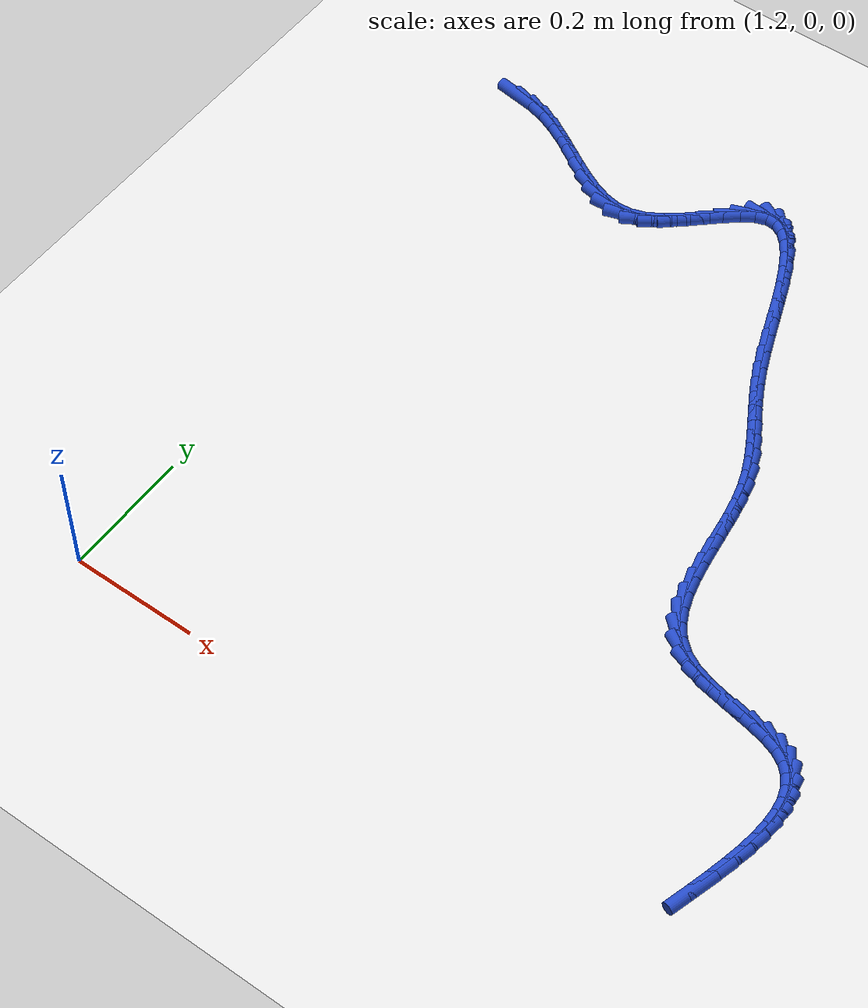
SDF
<sdf version="1.6">
 <world name="default">
  <model name="ground_plane">
   <static>1</static>
   <link name="link">
    <collision name="collision">
     <geometry><plane><normal>0 0 1</normal><size>100 100</size></plane></geometry>
     <surface><friction><ode><mu>100</mu><mu2>50</mu2></ode></friction></surface>
    </collision>
    <visual name="visual">
     <cast_shadows>0</cast_shadows>
     <geometry><plane><normal>0 0 1</normal><size>100 100</size></plane></geometry>
     <material>
      <script><uri>file://media/materials/scripts/gazebo.material</uri><name>Gazebo/WhiteGlow</name></script>
     </material>
    </visual>
   </link>
  </model>
  <model name="line">
   <link name="link_72">
    <pose>1.1750948468922375 1.0718994148305059 0.01 0 1.57 -0.14294108561909138</pose>
    <collision name="collision">
     <geometry><cylinder><radius>0.01</radius><length>0.08</length></cylinder></geometry>
    </collision>
    <visual name="visual">
     <material>
      <script><name>Gazebo/Blue</name><uri>file://media/materials/scripts/gazebo.material</uri></script>
     </material>
     <geometry><cylinder><radius>0.01</radius><length>0.08</length></cylinder></geometry>
    </visual>
   </link>
   <link name="link_73">
    <pose>1.202632668959613 1.06793609878063 0.01 0 1.57 -0.26894906797217144</pose>
    <collision name="collision">
     <geometry><cylinder><radius>0.01</radius><length>0.08</length></cylinder></geometry>
    </collision>
    <visual name="visual">
     <material>
      <script><name>Gazebo/Blue</name><uri>file://media/materials/scripts/gazebo.material</uri></script>
     </material>
     <geometry><cylinder><radius>0.01</radius><length>0.08</length></cylinder></geometry>
    </visual>
   </link>
   <link name="link_74">
    <pose>1.2296830183890382 1.060480291139011 0.01 0 1.57 -0.39330779206226607</pose>
    <collision name="collision">
     <geometry><cylinder><radius>0.01</radius><length>0.08</length></cylinder></geometry>
    </collision>
    <visual name="visual">
     <material>
      <script><name>Gazebo/Blue</name><uri>file://media/materials/scripts/gazebo.material</uri></script>
     </material>
     <geometry><cylinder><radius>0.01</radius><length>0.08</length></cylinder></geometry>
    </visual>
   </link>
   <link name="link_75">
    <pose>1.2561736688695626 1.0494886078980596 0.01 0 1.57 -0.4793022470671209</pose>
    <collision name="collision">
     <geometry><cylinder><radius>0.01</radius><length>0.08</length></cylinder></geometry>
    </collision>
    <visual name="visual">
     <material>
      <script><name>Gazebo/Blue</name><uri>file://media/materials/scripts/gazebo.material</uri></script>
     </material>
     <geometry><cylinder><radius>0.01</radius><length>0.08</length></cylinder></geometry>
    </visual>
   </link>
   <link name="link_76">
    <pose>1.2821425605165808 1.035991943936735 0.01 0 1.57 -0.5271888174598964</pose>
    <collision name="collision">
     <geometry><cylinder><radius>0.01</radius><length>0.08</length></cylinder></geometry>
    </collision>
    <visual name="visual">
     <material>
      <script><name>Gazebo/Blue</name><uri>file://media/materials/scripts/gazebo.material</uri></script>
     </material>
     <geometry><cylinder><radius>0.01</radius><length>0.08</length></cylinder></geometry>
    </visual>
   </link>
   <link name="link_77">
    <pose>1.3076406678835422 1.0211482983894755 0.01 0 1.57 -0.5399986357784393</pose>
    <collision name="collision">
     <geometry><cylinder><radius>0.01</radius><length>0.08</length></cylinder></geometry>
    </collision>
    <visual name="visual">
     <material>
      <script><name>Gazebo/Blue</name><uri>file://media/materials/scripts/gazebo.material</uri></script>
     </material>
     <geometry><cylinder><radius>0.01</radius><length>0.08</length></cylinder></geometry>
    </visual>
   </link>
   <link name="link_78">
    <pose>1.3327189655238965 1.0061156703907195 0.01 0 1.57 -0.5174334839989857</pose>
    <collision name="collision">
     <geometry><cylinder><radius>0.01</radius><length>0.08</length></cylinder></geometry>
    </collision>
    <visual name="visual">
     <material>
      <script><name>Gazebo/Blue</name><uri>file://media/materials/scripts/gazebo.material</uri></script>
     </material>
     <geometry><cylinder><radius>0.01</radius><length>0.08</length></cylinder></geometry>
    </visual>
   </link>
   <link name="link_79">
    <pose>1.3574284279910924 0.9920520590749053 0.01 0 1.57 -0.4551100600985925</pose>
    <collision name="collision">
     <geometry><cylinder><radius>0.01</radius><length>0.08</length></cylinder></geometry>
    </collision>
    <visual name="visual">
     <material>
      <script><name>Gazebo/Blue</name><uri>file://media/materials/scripts/gazebo.material</uri></script>
     </material>
     <geometry><cylinder><radius>0.01</radius><length>0.08</length></cylinder></geometry>
    </visual>
   </link>
   <link name="link_80">
    <pose>1.381820029838579 0.9801154635764713 0.01 0 1.57 -0.3443324530920283</pose>
    <collision name="collision">
     <geometry><cylinder><radius>0.01</radius><length>0.08</length></cylinder></geometry>
    </collision>
    <visual name="visual">
     <material>
      <script><name>Gazebo/Blue</name><uri>file://media/materials/scripts/gazebo.material</uri></script>
     </material>
     <geometry><cylinder><radius>0.01</radius><length>0.08</length></cylinder></geometry>
    </visual>
   </link>
   <link name="link_81">
    <pose>1.4059447456198064 0.9714638830298553 0.01 0 1.57 -0.17424081367749977</pose>
    <collision name="collision">
     <geometry><cylinder><radius>0.01</radius><length>0.08</length></cylinder></geometry>
    </collision>
    <visual name="visual">
     <material>
      <script><name>Gazebo/Blue</name><uri>file://media/materials/scripts/gazebo.material</uri></script>
     </material>
     <geometry><cylinder><radius>0.01</radius><length>0.08</length></cylinder></geometry>
    </visual>
   </link>
   <link name="link_82">
    <pose>1.4298535498882234 0.9672553165694961 0.01 0 1.57 0.05857738921441904</pose>
    <collision name="collision">
     <geometry><cylinder><radius>0.01</radius><length>0.08</length></cylinder></geometry>
    </collision>
    <visual name="visual">
     <material>
      <script><name>Gazebo/Blue</name><uri>file://media/materials/scripts/gazebo.material</uri></script>
     </material>
     <geometry><cylinder><radius>0.01</radius><length>0.08</length></cylinder></geometry>
    </visual>
   </link>
   <link name="link_83">
    <pose>1.4535974171972794 0.9686477633298317 0.01 0 1.57 0.3290535102537519</pose>
    <collision name="collision">
     <geometry><cylinder><radius>0.01</radius><length>0.08</length></cylinder></geometry>
    </collision>
    <visual name="visual">
     <material>
      <script><name>Gazebo/Blue</name><uri>file://media/materials/scripts/gazebo.material</uri></script>
     </material>
     <geometry><cylinder><radius>0.01</radius><length>0.08</length></cylinder></geometry>
    </visual>
   </link>
   <link name="link_84">
    <pose>1.4772212800030426 0.9767145488347417 0.01 0 1.57 0.5439208422819638</pose>
    <collision name="collision">
     <geometry><cylinder><radius>0.01</radius><length>0.08</length></cylinder></geometry>
    </collision>
    <visual name="visual">
     <material>
      <script><name>Gazebo/Blue</name><uri>file://media/materials/scripts/gazebo.material</uri></script>
     </material>
     <geometry><cylinder><radius>0.01</radius><length>0.08</length></cylinder></geometry>
    </visual>
   </link>
   <link name="link_85">
    <pose>1.500652777641465 0.9908852594644579 0.01 0 1.57 0.6684980318929817</pose>
    <collision name="collision">
     <geometry><cylinder><radius>0.01</radius><length>0.08</length></cylinder></geometry>
    </collision>
    <visual name="visual">
     <material>
      <script><name>Gazebo/Blue</name><uri>file://media/materials/scripts/gazebo.material</uri></script>
     </material>
     <geometry><cylinder><radius>0.01</radius><length>0.08</length></cylinder></geometry>
    </visual>
   </link>
   <link name="link_86">
    <pose>1.5237131667250068 1.0090986401361108 0.01 0 1.57 0.7299794538144441</pose>
    <collision name="collision">
     <geometry><cylinder><radius>0.01</radius><length>0.08</length></cylinder></geometry>
    </collision>
    <visual name="visual">
     <material>
      <script><name>Gazebo/Blue</name><uri>file://media/materials/scripts/gazebo.material</uri></script>
     </material>
     <geometry><cylinder><radius>0.01</radius><length>0.08</length></cylinder></geometry>
    </visual>
   </link>
   <link name="link_87">
    <pose>1.5462198503705196 1.0292394330975594 0.01 0 1.57 0.7418665057884931</pose>
    <collision name="collision">
     <geometry><cylinder><radius>0.01</radius><length>0.08</length></cylinder></geometry>
    </collision>
    <visual name="visual">
     <material>
      <script><name>Gazebo/Blue</name><uri>file://media/materials/scripts/gazebo.material</uri></script>
     </material>
     <geometry><cylinder><radius>0.01</radius><length>0.08</length></cylinder></geometry>
    </visual>
   </link>
   <link name="link_88">
    <pose>1.5679902316948557 1.0491923805966634 0.01 0 1.57 0.7024324888977352</pose>
    <collision name="collision">
     <geometry><cylinder><radius>0.01</radius><length>0.08</length></cylinder></geometry>
    </collision>
    <visual name="visual">
     <material>
      <script><name>Gazebo/Blue</name><uri>file://media/materials/scripts/gazebo.material</uri></script>
     </material>
     <geometry><cylinder><radius>0.01</radius><length>0.08</length></cylinder></geometry>
    </visual>
   </link>
   <link name="link_89">
    <pose>1.5888417138148654 1.0668422248812817 0.01 0 1.57 0.5902715443844094</pose>
    <collision name="collision">
     <geometry><cylinder><radius>0.01</radius><length>0.08</length></cylinder></geometry>
    </collision>
    <visual name="visual">
     <material>
      <script><name>Gazebo/Blue</name><uri>file://media/materials/scripts/gazebo.material</uri></script>
     </material>
     <geometry><cylinder><radius>0.01</radius><length>0.08</length></cylinder></geometry>
    </visual>
   </link>
   <link name="link_90">
    <pose>1.6085916998474008 1.080073708199273 0.01 0 1.57 0.3479893441711368</pose>
    <collision name="collision">
     <geometry><cylinder><radius>0.01</radius><length>0.08</length></cylinder></geometry>
    </collision>
    <visual name="visual">
     <material>
      <script><name>Gazebo/Blue</name><uri>file://media/materials/scripts/gazebo.material</uri></script>
     </material>
     <geometry><cylinder><radius>0.01</radius><length>0.08</length></cylinder></geometry>
    </visual>
   </link>
   <link name="link_91">
    <pose>1.627057674048823 1.0867722698052826 0.01 0 1.57 -0.07267802041351287</pose>
    <collision name="collision">
     <geometry><cylinder><radius>0.01</radius><length>0.08</length></cylinder></geometry>
    </collision>
    <visual name="visual">
     <material>
      <script><name>Gazebo/Blue</name><uri>file://media/materials/scripts/gazebo.material</uri></script>
     </material>
     <geometry><cylinder><radius>0.01</radius><length>0.08</length></cylinder></geometry>
    </visual>
   </link>
   <link name="link_92">
    <pose>1.6441392229602727 1.085528626192248 0.01 0 1.57 -0.4957483695676413</pose>
    <collision name="collision">
     <geometry><cylinder><radius>0.01</radius><length>0.08</length></cylinder></geometry>
    </collision>
    <visual name="visual">
     <material>
      <script><name>Gazebo/Blue</name><uri>file://media/materials/scripts/gazebo.material</uri></script>
     </material>
     <geometry><cylinder><radius>0.01</radius><length>0.08</length></cylinder></geometry>
    </visual>
   </link>
   <link name="link_93">
    <pose>1.6599725455999281 1.0769660486693442 0.01 0 1.57 -0.7898024223773686</pose>
    <collision name="collision">
     <geometry><cylinder><radius>0.01</radius><length>0.08</length></cylinder></geometry>
    </collision>
    <visual name="visual">
     <material>
      <script><name>Gazebo/Blue</name><uri>file://media/materials/scripts/gazebo.material</uri></script>
     </material>
     <geometry><cylinder><radius>0.01</radius><length>0.08</length></cylinder></geometry>
    </visual>
   </link>
   <link name="link_94">
    <pose>1.6747362093902405 1.0620717627430847 0.01 0 1.57 -0.9699054391754726</pose>
    <collision name="collision">
     <geometry><cylinder><radius>0.01</radius><length>0.08</length></cylinder></geometry>
    </collision>
    <visual name="visual">
     <material>
      <script><name>Gazebo/Blue</name><uri>file://media/materials/scripts/gazebo.material</uri></script>
     </material>
     <geometry><cylinder><radius>0.01</radius><length>0.08</length></cylinder></geometry>
    </visual>
   </link>
   <link name="link_95">
    <pose>1.6886087817536592 1.0418329939199809 0.01 0 1.57 -1.079505201330603</pose>
    <collision name="collision">
     <geometry><cylinder><radius>0.01</radius><length>0.08</length></cylinder></geometry>
    </collision>
    <visual name="visual">
     <material>
      <script><name>Gazebo/Blue</name><uri>file://media/materials/scripts/gazebo.material</uri></script>
     </material>
     <geometry><cylinder><radius>0.01</radius><length>0.08</length></cylinder></geometry>
    </visual>
   </link>
   <link name="link_96">
    <pose>1.7017688301126364 1.0172369677065465 0.01 0 1.57 -1.1467130301496264</pose>
    <collision name="collision">
     <geometry><cylinder><radius>0.01</radius><length>0.08</length></cylinder></geometry>
    </collision>
    <visual name="visual">
     <material>
      <script><name>Gazebo/Blue</name><uri>file://media/materials/scripts/gazebo.material</uri></script>
     </material>
     <geometry><cylinder><radius>0.01</radius><length>0.08</length></cylinder></geometry>
    </visual>
   </link>
   <link name="link_97">
    <pose>1.7143949218896224 0.9892709096092945 0.01 0 1.57 -1.186569959856762</pose>
    <collision name="collision">
     <geometry><cylinder><radius>0.01</radius><length>0.08</length></cylinder></geometry>
    </collision>
    <visual name="visual">
     <material>
      <script><name>Gazebo/Blue</name><uri>file://media/materials/scripts/gazebo.material</uri></script>
     </material>
     <geometry><cylinder><radius>0.01</radius><length>0.08</length></cylinder></geometry>
    </visual>
   </link>
   <link name="link_98">
    <pose>1.7266656245070684 0.9589220451347377 0.01 0 1.57 -1.2067964951865686</pose>
    <collision name="collision">
     <geometry><cylinder><radius>0.01</radius><length>0.08</length></cylinder></geometry>
    </collision>
    <visual name="visual">
     <material>
      <script><name>Gazebo/Blue</name><uri>file://media/materials/scripts/gazebo.material</uri></script>
     </material>
     <geometry><cylinder><radius>0.01</radius><length>0.08</length></cylinder></geometry>
    </visual>
   </link>
   <link name="link_99">
    <pose>1.7387595053874239 0.9271775997893885 0.01 0 1.57 -1.2109810207986353</pose>
    <collision name="collision">
     <geometry><cylinder><radius>0.01</radius><length>0.08</length></cylinder></geometry>
    </collision>
    <visual name="visual">
     <material>
      <script><name>Gazebo/Blue</name><uri>file://media/materials/scripts/gazebo.material</uri></script>
     </material>
     <geometry><cylinder><radius>0.01</radius><length>0.08</length></cylinder></geometry>
    </visual>
   </link>
   <link name="link_100">
    <pose>1.7508551319531414 0.89502479907976 0.01 0 1.57 -1.199982376759034</pose>
    <collision name="collision">
     <geometry><cylinder><radius>0.01</radius><length>0.08</length></cylinder></geometry>
    </collision>
    <visual name="visual">
     <material>
      <script><name>Gazebo/Blue</name><uri>file://media/materials/scripts/gazebo.material</uri></script>
     </material>
     <geometry><cylinder><radius>0.01</radius><length>0.08</length></cylinder></geometry>
    </visual>
   </link>
   <link name="link_101">
    <pose>1.76313107162667 0.8634508685123652 0.01 0 1.57 -1.1722755131791043</pose>
    <collision name="collision">
     <geometry><cylinder><radius>0.01</radius><length>0.08</length></cylinder></geometry>
    </collision>
    <visual name="visual">
     <material>
      <script><name>Gazebo/Blue</name><uri>file://media/materials/scripts/gazebo.material</uri></script>
     </material>
     <geometry><cylinder><radius>0.01</radius><length>0.08</length></cylinder></geometry>
    </visual>
   </link>
   <link name="link_102">
    <pose>1.7757658918304617 0.8334430335937171 0.01 0 1.57 -1.126703625701161</pose>
    <collision name="collision">
     <geometry><cylinder><radius>0.01</radius><length>0.08</length></cylinder></geometry>
    </collision>
    <visual name="visual">
     <material>
      <script><name>Gazebo/Blue</name><uri>file://media/materials/scripts/gazebo.material</uri></script>
     </material>
     <geometry><cylinder><radius>0.01</radius><length>0.08</length></cylinder></geometry>
    </visual>
   </link>
   <link name="link_103">
    <pose>1.7888943279016356 0.8058501116961803 0.01 0 1.57 -1.0830853196525927</pose>
    <collision name="collision">
     <geometry><cylinder><radius>0.01</radius><length>0.08</length></cylinder></geometry>
    </collision>
    <visual name="visual">
     <material>
      <script><name>Gazebo/Blue</name><uri>file://media/materials/scripts/gazebo.material</uri></script>
     </material>
     <geometry><cylinder><radius>0.01</radius><length>0.08</length></cylinder></geometry>
    </visual>
   </link>
   <link name="link_104">
    <pose>1.8023328607881006 0.7805159715144417 0.01 0 1.57 -1.0549644850772484</pose>
    <collision name="collision">
     <geometry><cylinder><radius>0.01</radius><length>0.08</length></cylinder></geometry>
    </collision>
    <visual name="visual">
     <material>
      <script><name>Gazebo/Blue</name><uri>file://media/materials/scripts/gazebo.material</uri></script>
     </material>
     <geometry><cylinder><radius>0.01</radius><length>0.08</length></cylinder></geometry>
    </visual>
   </link>
   <link name="link_105">
    <pose>1.8157575261701608 0.7568409991369649 0.01 0 1.57 -1.0462670902088889</pose>
    <collision name="collision">
     <geometry><cylinder><radius>0.01</radius><length>0.08</length></cylinder></geometry>
    </collision>
    <visual name="visual">
     <material>
      <script><name>Gazebo/Blue</name><uri>file://media/materials/scripts/gazebo.material</uri></script>
     </material>
     <geometry><cylinder><radius>0.01</radius><length>0.08</length></cylinder></geometry>
    </visual>
   </link>
   <link name="link_106">
    <pose>1.8288437429993871 0.7342236332141086 0.01 0 1.57 -1.0598667852115629</pose>
    <collision name="collision">
     <geometry><cylinder><radius>0.01</radius><length>0.08</length></cylinder></geometry>
    </collision>
    <visual name="visual">
     <material>
      <script><name>Gazebo/Blue</name><uri>file://media/materials/scripts/gazebo.material</uri></script>
     </material>
     <geometry><cylinder><radius>0.01</radius><length>0.08</length></cylinder></geometry>
    </visual>
   </link>
   <link name="link_107">
    <pose>1.841266930227349 0.7120623123962305 0.01 0 1.57 -1.0970808396330438</pose>
    <collision name="collision">
     <geometry><cylinder><radius>0.01</radius><length>0.08</length></cylinder></geometry>
    </collision>
    <visual name="visual">
     <material>
      <script><name>Gazebo/Blue</name><uri>file://media/materials/scripts/gazebo.material</uri></script>
     </material>
     <geometry><cylinder><radius>0.01</radius><length>0.08</length></cylinder></geometry>
    </visual>
   </link>
   <link name="link_108">
    <pose>1.8527025068056175 0.6897554753336896 0.01 0 1.57 -1.157028779472535</pose>
    <collision name="collision">
     <geometry><cylinder><radius>0.01</radius><length>0.08</length></cylinder></geometry>
    </collision>
    <visual name="visual">
     <material>
      <script><name>Gazebo/Blue</name><uri>file://media/materials/scripts/gazebo.material</uri></script>
     </material>
     <geometry><cylinder><radius>0.01</radius><length>0.08</length></cylinder></geometry>
    </visual>
   </link>
   <link name="link_109">
    <pose>1.8628258916857634 0.6667015606768443 0.01 0 1.57 -1.2361045497343777</pose>
    <collision name="collision">
     <geometry><cylinder><radius>0.01</radius><length>0.08</length></cylinder></geometry>
    </collision>
    <visual name="visual">
     <material>
      <script><name>Gazebo/Blue</name><uri>file://media/materials/scripts/gazebo.material</uri></script>
     </material>
     <geometry><cylinder><radius>0.01</radius><length>0.08</length></cylinder></geometry>
    </visual>
   </link>
   <link name="link_110">
    <pose>1.8713125038193557 0.6422990070760527 0.01 0 1.57 -1.3240467772435631</pose>
    <collision name="collision">
     <geometry><cylinder><radius>0.01</radius><length>0.08</length></cylinder></geometry>
    </collision>
    <visual name="visual">
     <material>
      <script><name>Gazebo/Blue</name><uri>file://media/materials/scripts/gazebo.material</uri></script>
     </material>
     <geometry><cylinder><radius>0.01</radius><length>0.08</length></cylinder></geometry>
    </visual>
   </link>
   <link name="link_111">
    <pose>1.8779228191657453 0.6160553501578272 0.01 0 1.57 -1.390050520017113</pose>
    <collision name="collision">
     <geometry><cylinder><radius>0.01</radius><length>0.08</length></cylinder></geometry>
    </collision>
    <visual name="visual">
     <material>
      <script><name>Gazebo/Blue</name><uri>file://media/materials/scripts/gazebo.material</uri></script>
     </material>
     <geometry><cylinder><radius>0.01</radius><length>0.08</length></cylinder></geometry>
    </visual>
   </link>
   <link name="link_112">
    <pose>1.883006845522727 0.5882342788933557 0.01 0 1.57 -1.4275033524967904</pose>
    <collision name="collision">
     <geometry><cylinder><radius>0.01</radius><length>0.08</length></cylinder></geometry>
    </collision>
    <visual name="visual">
     <material>
      <script><name>Gazebo/Blue</name><uri>file://media/materials/scripts/gazebo.material</uri></script>
     </material>
     <geometry><cylinder><radius>0.01</radius><length>0.08</length></cylinder></geometry>
    </visual>
   </link>
   <link name="link_113">
    <pose>1.887164262937059 0.5594197202695133 0.01 0 1.57 -1.440431186445116</pose>
    <collision name="collision">
     <geometry><cylinder><radius>0.01</radius><length>0.08</length></cylinder></geometry>
    </collision>
    <visual name="visual">
     <material>
      <script><name>Gazebo/Blue</name><uri>file://media/materials/scripts/gazebo.material</uri></script>
     </material>
     <geometry><cylinder><radius>0.01</radius><length>0.08</length></cylinder></geometry>
    </visual>
   </link>
   <link name="link_114">
    <pose>1.8909956487894097 0.5301967522237955 0.01 0 1.57 -1.4303685754343425</pose>
    <collision name="collision">
     <geometry><cylinder><radius>0.01</radius><length>0.08</length></cylinder></geometry>
    </collision>
    <visual name="visual">
     <material>
      <script><name>Gazebo/Blue</name><uri>file://media/materials/scripts/gazebo.material</uri></script>
     </material>
     <geometry><cylinder><radius>0.01</radius><length>0.08</length></cylinder></geometry>
    </visual>
   </link>
   <link name="link_115">
    <pose>1.8951015804604454 0.501150452693699 0.01 0 1.57 -1.396478571745728</pose>
    <collision name="collision">
     <geometry><cylinder><radius>0.01</radius><length>0.08</length></cylinder></geometry>
    </collision>
    <visual name="visual">
     <material>
      <script><name>Gazebo/Blue</name><uri>file://media/materials/scripts/gazebo.material</uri></script>
     </material>
     <geometry><cylinder><radius>0.01</radius><length>0.08</length></cylinder></geometry>
    </visual>
   </link>
   <link name="link_116">
    <pose>1.9000826353308342 0.4728658996167196 0.01 0 1.57 -1.3355426836005624</pose>
    <collision name="collision">
     <geometry><cylinder><radius>0.01</radius><length>0.08</length></cylinder></geometry>
    </collision>
    <visual name="visual">
     <material>
      <script><name>Gazebo/Blue</name><uri>file://media/materials/scripts/gazebo.material</uri></script>
     </material>
     <geometry><cylinder><radius>0.01</radius><length>0.08</length></cylinder></geometry>
    </visual>
   </link>
   <link name="link_117">
    <pose>1.9065393907812425 0.4459281709303537 0.01 0 1.57 -1.2419451109359745</pose>
    <collision name="collision">
     <geometry><cylinder><radius>0.01</radius><length>0.08</length></cylinder></geometry>
    </collision>
    <visual name="visual">
     <material>
      <script><name>Gazebo/Blue</name><uri>file://media/materials/scripts/gazebo.material</uri></script>
     </material>
     <geometry><cylinder><radius>0.01</radius><length>0.08</length></cylinder></geometry>
    </visual>
   </link>
   <link name="link_118">
    <pose>1.9150724241923385 0.42092234457209754 0.01 0 1.57 -1.108377967244035</pose>
    <collision name="collision">
     <geometry><cylinder><radius>0.01</radius><length>0.08</length></cylinder></geometry>
    </collision>
    <visual name="visual">
     <material>
      <script><name>Gazebo/Blue</name><uri>file://media/materials/scripts/gazebo.material</uri></script>
     </material>
     <geometry><cylinder><radius>0.01</radius><length>0.08</length></cylinder></geometry>
    </visual>
   </link>
   <link name="link_119">
    <pose>1.9262823129447886 0.3984334984794471 0.01 0 1.57 -0.9290395292046933</pose>
    <collision name="collision">
     <geometry><cylinder><radius>0.01</radius><length>0.08</length></cylinder></geometry>
    </collision>
    <visual name="visual">
     <material>
      <script><name>Gazebo/Blue</name><uri>file://media/materials/scripts/gazebo.material</uri></script>
     </material>
     <geometry><cylinder><radius>0.01</radius><length>0.08</length></cylinder></geometry>
    </visual>
   </link>
   <link name="link_120">
    <pose>1.9407696344192604 0.37904671058989853 0.01 0 1.57 -0.7073045206840477</pose>
    <collision name="collision">
     <geometry><cylinder><radius>0.01</radius><length>0.08</length></cylinder></geometry>
    </collision>
    <visual name="visual">
     <material>
      <script><name>Gazebo/Blue</name><uri>file://media/materials/scripts/gazebo.material</uri></script>
     </material>
     <geometry><cylinder><radius>0.01</radius><length>0.08</length></cylinder></geometry>
    </visual>
   </link>
   <link name="link_121">
    <pose>1.9591349659964212 0.3633470588409481 0.01 0 1.57 -0.47872687457374474</pose>
    <collision name="collision">
     <geometry><cylinder><radius>0.01</radius><length>0.08</length></cylinder></geometry>
    </collision>
    <visual name="visual">
     <material>
      <script><name>Gazebo/Blue</name><uri>file://media/materials/scripts/gazebo.material</uri></script>
     </material>
     <geometry><cylinder><radius>0.01</radius><length>0.08</length></cylinder></geometry>
    </visual>
   </link>
   <link name="link_122">
    <pose>1.9816665383665972 0.35165331411366946 0.01 0 1.57 -0.31772812078153184</pose>
    <collision name="collision">
     <geometry><cylinder><radius>0.01</radius><length>0.08</length></cylinder></geometry>
    </collision>
    <visual name="visual">
     <material>
      <script><name>Gazebo/Blue</name><uri>file://media/materials/scripts/gazebo.material</uri></script>
     </material>
     <geometry><cylinder><radius>0.01</radius><length>0.08</length></cylinder></geometry>
    </visual>
   </link>
   <link name="link_123">
    <pose>2.0073780425808962 0.3431975736981896 0.01 0 1.57 -0.2232896069160955</pose>
    <collision name="collision">
     <geometry><cylinder><radius>0.01</radius><length>0.08</length></cylinder></geometry>
    </collision>
    <visual name="visual">
     <material>
      <script><name>Gazebo/Blue</name><uri>file://media/materials/scripts/gazebo.material</uri></script>
     </material>
     <geometry><cylinder><radius>0.01</radius><length>0.08</length></cylinder></geometry>
    </visual>
   </link>
   <link name="link_124">
    <pose>2.0349581204819396 0.3369347976503297 0.01 0 1.57 -0.17981841525100598</pose>
    <collision name="collision">
     <geometry><cylinder><radius>0.01</radius><length>0.08</length></cylinder></geometry>
    </collision>
    <visual name="visual">
     <material>
      <script><name>Gazebo/Blue</name><uri>file://media/materials/scripts/gazebo.material</uri></script>
     </material>
     <geometry><cylinder><radius>0.01</radius><length>0.08</length></cylinder></geometry>
    </visual>
   </link>
   <link name="link_125">
    <pose>2.063095413818891 0.3318199459462334 0.01 0 1.57 -0.18102732599966345</pose>
    <collision name="collision">
     <geometry><cylinder><radius>0.01</radius><length>0.08</length></cylinder></geometry>
    </collision>
    <visual name="visual">
     <material>
      <script><name>Gazebo/Blue</name><uri>file://media/materials/scripts/gazebo.material</uri></script>
     </material>
     <geometry><cylinder><radius>0.01</radius><length>0.08</length></cylinder></geometry>
    </visual>
   </link>
   <link name="link_126">
    <pose>2.0904785643409176 0.32680797856204435 0.01 0 1.57 -0.2309794750159081</pose>
    <collision name="collision">
     <geometry><cylinder><radius>0.01</radius><length>0.08</length></cylinder></geometry>
    </collision>
    <visual name="visual">
     <material>
      <script><name>Gazebo/Blue</name><uri>file://media/materials/scripts/gazebo.material</uri></script>
     </material>
     <geometry><cylinder><radius>0.01</radius><length>0.08</length></cylinder></geometry>
    </visual>
   </link>
   <link name="link_127">
    <pose>2.115796213797183 0.3208538554739061 0.01 0 1.57 -0.3472628654974452</pose>
    <collision name="collision">
     <geometry><cylinder><radius>0.01</radius><length>0.08</length></cylinder></geometry>
    </collision>
    <visual name="visual">
     <material>
      <script><name>Gazebo/Blue</name><uri>file://media/materials/scripts/gazebo.material</uri></script>
     </material>
     <geometry><cylinder><radius>0.01</radius><length>0.08</length></cylinder></geometry>
    </visual>
   </link>
   <link name="link_128">
    <pose>2.1377372715697858 0.3129127342053003 0.01 0 1.57 -0.545833862077855</pose>
    <collision name="collision">
     <geometry><cylinder><radius>0.01</radius><length>0.08</length></cylinder></geometry>
    </collision>
    <visual name="visual">
     <material>
      <script><name>Gazebo/Blue</name><uri>file://media/materials/scripts/gazebo.material</uri></script>
     </material>
     <geometry><cylinder><radius>0.01</radius><length>0.08</length></cylinder></geometry>
    </visual>
   </link>
   <link name="link_129">
    <pose>2.155357402780084 0.30221048493182706 0.01 0 1.57 -0.7847284338514211</pose>
    <collision name="collision">
     <geometry><cylinder><radius>0.01</radius><length>0.08</length></cylinder></geometry>
    </collision>
    <visual name="visual">
     <material>
      <script><name>Gazebo/Blue</name><uri>file://media/materials/scripts/gazebo.material</uri></script>
     </material>
     <geometry><cylinder><radius>0.01</radius><length>0.08</length></cylinder></geometry>
    </visual>
   </link>
   <link name="link_130">
    <pose>2.1688057702101657 0.2887801189863381 0.01 0 1.57 -1.0283893736835048</pose>
    <collision name="collision">
     <geometry><cylinder><radius>0.01</radius><length>0.08</length></cylinder></geometry>
    </collision>
    <visual name="visual">
     <material>
      <script><name>Gazebo/Blue</name><uri>file://media/materials/scripts/gazebo.material</uri></script>
     </material>
     <geometry><cylinder><radius>0.01</radius><length>0.08</length></cylinder></geometry>
    </visual>
   </link>
   <link name="link_131">
    <pose>2.178434429418493 0.2728044085253271 0.01 0 1.57 -1.2466798627596278</pose>
    <collision name="collision">
     <geometry><cylinder><radius>0.01</radius><length>0.08</length></cylinder></geometry>
    </collision>
    <visual name="visual">
     <material>
      <script><name>Gazebo/Blue</name><uri>file://media/materials/scripts/gazebo.material</uri></script>
     </material>
     <geometry><cylinder><radius>0.01</radius><length>0.08</length></cylinder></geometry>
    </visual>
   </link>
   <link name="link_132">
    <pose>2.1845954359635273 0.25446612570528815 0.01 0 1.57 -1.4234464578608124</pose>
    <collision name="collision">
     <geometry><cylinder><radius>0.01</radius><length>0.08</length></cylinder></geometry>
    </collision>
    <visual name="visual">
     <material>
      <script><name>Gazebo/Blue</name><uri>file://media/materials/scripts/gazebo.material</uri></script>
     </material>
     <geometry><cylinder><radius>0.01</radius><length>0.08</length></cylinder></geometry>
    </visual>
   </link>
   <link name="link_133">
    <pose>2.18764084540373 0.23394804268271502 0.01 0 1.57 -1.5582779266435998</pose>
    <collision name="collision">
     <geometry><cylinder><radius>0.01</radius><length>0.08</length></cylinder></geometry>
    </collision>
    <visual name="visual">
     <material>
      <script><name>Gazebo/Blue</name><uri>file://media/materials/scripts/gazebo.material</uri></script>
     </material>
     <geometry><cylinder><radius>0.01</radius><length>0.08</length></cylinder></geometry>
    </visual>
   </link>
   <link name="link_134">
    <pose>2.187922713297563 0.2114329316141018 0.01 0 1.57 1.483486043494289</pose>
    <collision name="collision">
     <geometry><cylinder><radius>0.01</radius><length>0.08</length></cylinder></geometry>
    </collision>
    <visual name="visual">
     <material>
      <script><name>Gazebo/Blue</name><uri>file://media/materials/scripts/gazebo.material</uri></script>
     </material>
     <geometry><cylinder><radius>0.01</radius><length>0.08</length></cylinder></geometry>
    </visual>
   </link>
   <link name="link_135">
    <pose>2.185793095203488 0.1871035646559417 0.01 0 1.57 1.4108150812926912</pose>
    <collision name="collision">
     <geometry><cylinder><radius>0.01</radius><length>0.08</length></cylinder></geometry>
    </collision>
    <visual name="visual">
     <material>
      <script><name>Gazebo/Blue</name><uri>file://media/materials/scripts/gazebo.material</uri></script>
     </material>
     <geometry><cylinder><radius>0.01</radius><length>0.08</length></cylinder></geometry>
    </visual>
   </link>
   <link name="link_136">
    <pose>2.1816040466799653 0.16114271396472846 0.01 0 1.57 1.3589027391332664</pose>
    <collision name="collision">
     <geometry><cylinder><radius>0.01</radius><length>0.08</length></cylinder></geometry>
    </collision>
    <visual name="visual">
     <material>
      <script><name>Gazebo/Blue</name><uri>file://media/materials/scripts/gazebo.material</uri></script>
     </material>
     <geometry><cylinder><radius>0.01</radius><length>0.08</length></cylinder></geometry>
    </visual>
   </link>
   <link name="link_137">
    <pose>2.175707623285459 0.13373315169695726 0.01 0 1.57 1.3230996797969068</pose>
    <collision name="collision">
     <geometry><cylinder><radius>0.01</radius><length>0.08</length></cylinder></geometry>
    </collision>
    <visual name="visual">
     <material>
      <script><name>Gazebo/Blue</name><uri>file://media/materials/scripts/gazebo.material</uri></script>
     </material>
     <geometry><cylinder><radius>0.01</radius><length>0.08</length></cylinder></geometry>
    </visual>
   </link>
   <link name="link_138">
    <pose>2.1684558805784278 0.10505765000912015 0.01 0 1.57 1.3002017342188235</pose>
    <collision name="collision">
     <geometry><cylinder><radius>0.01</radius><length>0.08</length></cylinder></geometry>
    </collision>
    <visual name="visual">
     <material>
      <script><name>Gazebo/Blue</name><uri>file://media/materials/scripts/gazebo.material</uri></script>
     </material>
     <geometry><cylinder><radius>0.01</radius><length>0.08</length></cylinder></geometry>
    </visual>
   </link>
   <link name="link_139">
    <pose>2.1602008741173346 0.07529898105771266 0.01 0 1.57 1.2880850771445382</pose>
    <collision name="collision">
     <geometry><cylinder><radius>0.01</radius><length>0.08</length></cylinder></geometry>
    </collision>
    <visual name="visual">
     <material>
      <script><name>Gazebo/Blue</name><uri>file://media/materials/scripts/gazebo.material</uri></script>
     </material>
     <geometry><cylinder><radius>0.01</radius><length>0.08</length></cylinder></geometry>
    </visual>
   </link>
  </model>
 </world>
</sdf>
